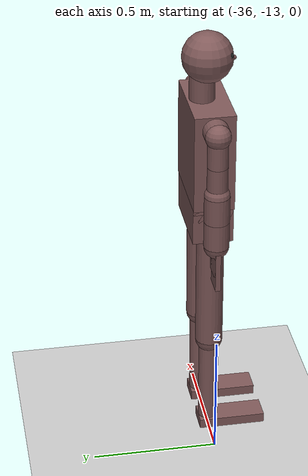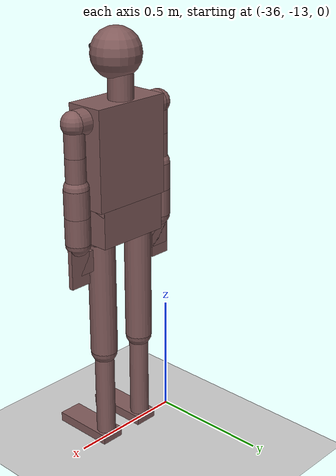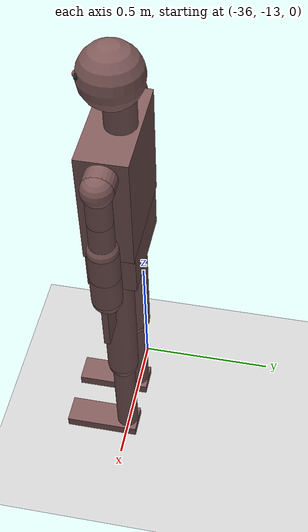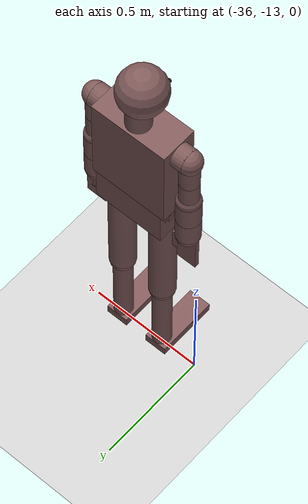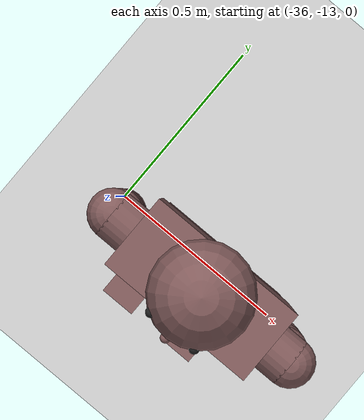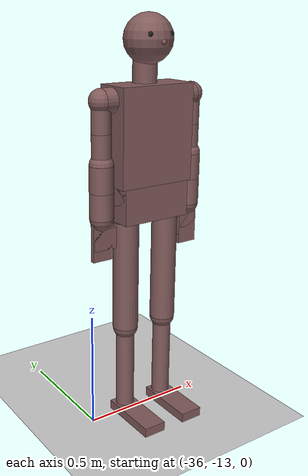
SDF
<sdf version="1.6">
 <world name="default">
  <model name="ground_plane">
   <static>1</static>
   <link name="link">
    <collision name="collision">
     <geometry><plane><normal>0 0 1</normal><size>100 100</size></plane></geometry>
     <surface><friction><ode><mu>100</mu><mu2>50</mu2></ode></friction></surface>
    </collision>
    <visual name="visual">
     <cast_shadows>0</cast_shadows>
     <geometry><plane><normal>0 0 1</normal><size>100 100</size></plane></geometry>
     <material>
      <script><uri>file://media/materials/scripts/gazebo.material</uri><name>Gazebo/Grey</name></script>
     </material>
    </visual>
   </link>
  </model>
  <model name="victim175_hot_moving_0">
   <static>1</static>
   <self_collide>1</self_collide>
   <link name="head">
    <pose>0 0 1.625 0 -0 0</pose>
    <visual name="visual">
     <geometry><sphere><radius>0.1</radius></sphere></geometry>
     <material>
      <emissive>0.5 0.35 0.35 1</emissive>
      <ambient>0.5 0.35 0.35 1</ambient>
      <diffuse>0.5 0.35 0.35 1</diffuse>
      <specular>0 0 0 0</specular>
     </material>
    </visual>
    <collision name="collision"><geometry><sphere><radius>0.1</radius></sphere></geometry></collision>
    <visual name="visual_nose">
     <pose>0 -0.1 -0.01 0 -0 0</pose>
     <geometry><sphere><radius>0.01</radius></sphere></geometry>
     <material>
      <emissive>0.5 0.35 0.35 1</emissive>
      <ambient>0.5 0.35 0.35 1</ambient>
      <diffuse>0.5 0.35 0.35 1</diffuse>
      <specular>0 0 0 0</specular>
     </material>
    </visual>
    <visual name="visual_rEye">
     <pose>-0.05 -0.08 0.02 0 -0 0</pose>
     <geometry><sphere><radius>0.01</radius></sphere></geometry>
     <material>
      <script><uri>file://media/materials/scripts/gazebo.material</uri><name>Gazebo/Black</name></script>
     </material>
    </visual>
    <visual name="visual_lEye">
     <pose>0.05 -0.08 0.02 0 -0 0</pose>
     <geometry><sphere><radius>0.01</radius></sphere></geometry>
     <material>
      <script><uri>file://media/materials/scripts/gazebo.material</uri><name>Gazebo/Black</name></script>
     </material>
    </visual>
    <self_collide>1</self_collide>
   </link>
   <link name="neck">
    <pose>0 0.02 1.49 0 -0 0</pose>
    <visual name="visual">
     <geometry><cylinder><radius>0.05</radius><length>0.15</length></cylinder></geometry>
     <material>
      <emissive>0.5 0.35 0.35 1</emissive>
      <ambient>0.5 0.35 0.35 1</ambient>
      <diffuse>0.5 0.35 0.35 1</diffuse>
      <specular>0 0 0 0</specular>
     </material>
    </visual>
    <collision name="collision">
     <geometry><cylinder><radius>0.05</radius><length>0.15</length></cylinder></geometry>
    </collision>
    <self_collide>1</self_collide>
   </link>
   <joint name="neck_head" type="revolute">
    <pose>0 0.02 -0.075 0 -0 0</pose>
    <child>head</child>
    <parent>neck</parent>
    <axis>
     <xyz>0 0 -1</xyz>
     <limit><lower>-1.7</lower><upper>1.7</upper></limit>
     <dynamics>
      <friction>0.01</friction>
      <spring_reference>0</spring_reference>
      <spring_stiffness>0</spring_stiffness>
     </dynamics>
     <use_parent_model_frame>0</use_parent_model_frame>
    </axis>
   </joint>
   <link name="body">
    <pose>0 0 1.255 0 -0 0</pose>
    <visual name="visual">
     <geometry><box><size>0.34 0.16 0.4</size></box></geometry>
     <material>
      <emissive>0.5 0.35 0.35 1</emissive>
      <ambient>0.5 0.35 0.35 1</ambient>
      <diffuse>0.5 0.35 0.35 1</diffuse>
      <specular>0 0 0 0</specular>
     </material>
    </visual>
    <collision name="collision"><geometry><box><size>0.34 0.16 0.4</size></box></geometry></collision>
    <self_collide>1</self_collide>
   </link>
   <joint name="body_neck" type="revolute">
    <pose>0 0.06 -0.075 0 -0 0</pose>
    <child>neck</child>
    <parent>body</parent>
    <axis>
     <xyz>1 0 0</xyz>
     <limit><lower>-0.2</lower><upper>1</upper></limit>
     <dynamics>
      <friction>0.01</friction>
      <spring_reference>0</spring_reference>
      <spring_stiffness>0</spring_stiffness>
     </dynamics>
     <use_parent_model_frame>0</use_parent_model_frame>
    </axis>
   </joint>
   <link name="waist">
    <pose>0 0 1.005 0 -0 0</pose>
    <visual name="visual">
     <pose>0 0 -0.025 0 -0 0</pose>
     <geometry><box><size>0.31 0.16 0.15</size></box></geometry>
     <material>
      <emissive>0.5 0.35 0.35 1</emissive>
      <ambient>0.5 0.35 0.35 1</ambient>
      <diffuse>0.5 0.35 0.35 1</diffuse>
      <specular>0 0 0 0</specular>
     </material>
    </visual>
    <collision name="collision"><geometry><box><size>0.31 0.16 0.1</size></box></geometry></collision>
    <visual name="visual2">
     <pose>0 0 0.05 3.14159 1.57079 3.14159</pose>
     <geometry><cylinder><radius>0.08</radius><length>0.31</length></cylinder></geometry>
     <material>
      <emissive>0.5 0.35 0.35 1</emissive>
      <ambient>0.5 0.35 0.35 1</ambient>
      <diffuse>0.5 0.35 0.35 1</diffuse>
      <specular>0 0 0 0</specular>
     </material>
    </visual>
    <collision name="collision2">
     <pose>0 0 0.05 3.14159 1.57079 3.14159</pose>
     <geometry><cylinder><radius>0.08</radius><length>0.31</length></cylinder></geometry>
    </collision>
    <self_collide>1</self_collide>
   </link>
   <joint name="body_waist" type="revolute">
    <pose>0 0 0.05 0 -0 0</pose>
    <child>waist</child>
    <parent>body</parent>
    <axis>
     <xyz>-1 0 0</xyz>
     <limit><lower>0</lower><upper>0</upper></limit>
     <dynamics>
      <friction>0.01</friction>
      <spring_reference>0</spring_reference>
      <spring_stiffness>0</spring_stiffness>
     </dynamics>
     <use_parent_model_frame>0</use_parent_model_frame>
    </axis>
   </joint>
   <link name="rHand">
    <pose>-0.22 0 0.84 0 -0 0</pose>
    <visual name="visual">
     <geometry><box><size>0.09 0.02 0.18</size></box></geometry>
     <material>
      <emissive>0.5 0.35 0.35 1</emissive>
      <ambient>0.5 0.35 0.35 1</ambient>
      <diffuse>0.5 0.35 0.35 1</diffuse>
      <specular>0 0 0 0</specular>
     </material>
    </visual>
    <collision name="collision"><geometry><box><size>0.09 0.02 0.18</size></box></geometry></collision>
    <visual name="visual2">
     <pose>0.02 0 0 0 -0 0</pose>
     <geometry><box><size>0.12 0.02 0.09</size></box></geometry>
     <material>
      <emissive>0.5 0.35 0.35 1</emissive>
      <ambient>0.5 0.35 0.35 1</ambient>
      <diffuse>0.5 0.35 0.35 1</diffuse>
      <specular>0 0 0 0</specular>
     </material>
    </visual>
    <collision name="collision2">
     <pose>0.02 0 0 0 -0 0</pose>
     <geometry><box><size>0.12 0.02 0.09</size></box></geometry>
    </collision>
    <self_collide>1</self_collide>
   </link>
   <link name="lHand">
    <pose>0.22 0 0.84 0 -0 0</pose>
    <visual name="visual">
     <geometry><box><size>0.09 0.02 0.18</size></box></geometry>
     <material>
      <emissive>0.5 0.35 0.35 1</emissive>
      <ambient>0.5 0.35 0.35 1</ambient>
      <diffuse>0.5 0.35 0.35 1</diffuse>
      <specular>0 0 0 0</specular>
     </material>
    </visual>
    <collision name="collision"><geometry><box><size>0.09 0.02 0.18</size></box></geometry></collision>
    <visual name="visual2">
     <pose>-0.02 0 0 0 -0 0</pose>
     <geometry><box><size>0.12 0.02 0.09</size></box></geometry>
     <material>
      <emissive>0.5 0.35 0.35 1</emissive>
      <ambient>0.5 0.35 0.35 1</ambient>
      <diffuse>0.5 0.35 0.35 1</diffuse>
      <specular>0 0 0 0</specular>
     </material>
    </visual>
    <collision name="collision2">
     <pose>-0.02 0 0 0 -0 0</pose>
     <geometry><box><size>0.12 0.02 0.09</size></box></geometry>
    </collision>
    <self_collide>1</self_collide>
   </link>
   <link name="rFoot">
    <pose>-0.1 -0.095 0.02 0 -0 0</pose>
    <visual name="visual">
     <geometry><box><size>0.1 0.27 0.04</size></box></geometry>
     <material>
      <emissive>0.5 0.35 0.35 1</emissive>
      <ambient>0.5 0.35 0.35 1</ambient>
      <diffuse>0.5 0.35 0.35 1</diffuse>
      <specular>0 0 0 0</specular>
     </material>
    </visual>
    <collision name="collision"><geometry><box><size>0.1 0.27 0.04</size></box></geometry></collision>
    <self_collide>1</self_collide>
   </link>
   <link name="lFoot">
    <pose>0.1 -0.095 0.02 0 -0 0</pose>
    <visual name="visual">
     <geometry><box><size>0.1 0.27 0.04</size></box></geometry>
     <material>
      <emissive>0.5 0.35 0.35 1</emissive>
      <ambient>0.5 0.35 0.35 1</ambient>
      <diffuse>0.5 0.35 0.35 1</diffuse>
      <specular>0 0 0 0</specular>
     </material>
    </visual>
    <collision name="collision"><geometry><box><size>0.1 0.27 0.04</size></box></geometry></collision>
    <self_collide>1</self_collide>
   </link>
   <link name="rLeg2">
    <pose>-0.1 0 0.23 0 -0 0</pose>
    <visual name="visual">
     <geometry><cylinder><radius>0.04</radius><length>0.38</length></cylinder></geometry>
     <material>
      <emissive>0.5 0.35 0.35 1</emissive>
      <ambient>0.5 0.35 0.35 1</ambient>
      <diffuse>0.5 0.35 0.35 1</diffuse>
      <specular>0 0 0 0</specular>
     </material>
    </visual>
    <collision name="collision">
     <geometry><cylinder><radius>0.04</radius><length>0.38</length></cylinder></geometry>
    </collision>
    <visual name="visual2">
     <pose>0 0 -0.19 0 -0 0</pose>
     <geometry><sphere><radius>0.04</radius></sphere></geometry>
     <material>
      <emissive>0.5 0.35 0.35 1</emissive>
      <ambient>0.5 0.35 0.35 1</ambient>
      <diffuse>0.5 0.35 0.35 1</diffuse>
      <specular>0 0 0 0</specular>
     </material>
    </visual>
    <collision name="collision2">
     <pose>0 0 -0.19 0 -0 0</pose>
     <geometry><sphere><radius>0.04</radius></sphere></geometry>
    </collision>
    <self_collide>1</self_collide>
   </link>
   <link name="lLeg2">
    <pose>0.1 0 0.23 0 -0 0</pose>
    <visual name="visual">
     <geometry><cylinder><radius>0.04</radius><length>0.38</length></cylinder></geometry>
     <material>
      <emissive>0.5 0.35 0.35 1</emissive>
      <ambient>0.5 0.35 0.35 1</ambient>
      <diffuse>0.5 0.35 0.35 1</diffuse>
      <specular>0 0 0 0</specular>
     </material>
    </visual>
    <collision name="collision">
     <geometry><cylinder><radius>0.04</radius><length>0.38</length></cylinder></geometry>
    </collision>
    <visual name="visual2">
     <pose>0 0 -0.19 0 -0 0</pose>
     <geometry><sphere><radius>0.04</radius></sphere></geometry>
     <material>
      <emissive>0.5 0.35 0.35 1</emissive>
      <ambient>0.5 0.35 0.35 1</ambient>
      <diffuse>0.5 0.35 0.35 1</diffuse>
      <specular>0 0 0 0</specular>
     </material>
    </visual>
    <collision name="collision2">
     <pose>0 0 -0.19 0 -0 0</pose>
     <geometry><sphere><radius>0.04</radius></sphere></geometry>
    </collision>
    <self_collide>1</self_collide>
   </link>
   <joint name="rLeg2_rFoot" type="revolute">
    <pose>0 0.095 0.02 0 -0 0</pose>
    <child>rFoot</child>
    <parent>rLeg2</parent>
    <axis>
     <xyz>1 0 0</xyz>
     <limit><lower>0</lower><upper>0</upper></limit>
     <dynamics>
      <friction>0.01</friction>
      <spring_reference>0</spring_reference>
      <spring_stiffness>0</spring_stiffness>
     </dynamics>
     <use_parent_model_frame>0</use_parent_model_frame>
    </axis>
   </joint>
   <joint name="lLeg2_lFoot" type="revolute">
    <pose>0 0.095 0.02 0 -0 0</pose>
    <child>lFoot</child>
    <parent>lLeg2</parent>
    <axis>
     <xyz>1 0 0</xyz>
     <limit><lower>0</lower><upper>0</upper></limit>
     <dynamics>
      <friction>0.01</friction>
      <spring_reference>0</spring_reference>
      <spring_stiffness>0</spring_stiffness>
     </dynamics>
     <use_parent_model_frame>0</use_parent_model_frame>
    </axis>
   </joint>
   <link name="rLeg1">
    <pose>-0.1 0 0.66 0 -0 0</pose>
    <visual name="visual">
     <geometry><cylinder><radius>0.055</radius><length>0.48</length></cylinder></geometry>
     <material>
      <emissive>0.5 0.35 0.35 1</emissive>
      <ambient>0.5 0.35 0.35 1</ambient>
      <diffuse>0.5 0.35 0.35 1</diffuse>
      <specular>0 0 0 0</specular>
     </material>
    </visual>
    <collision name="collision">
     <geometry><cylinder><radius>0.055</radius><length>0.48</length></cylinder></geometry>
    </collision>
    <visual name="visual2">
     <pose>0 0 -0.24 0 -0 0</pose>
     <geometry><sphere><radius>0.055</radius></sphere></geometry>
     <material>
      <emissive>0.5 0.35 0.35 1</emissive>
      <ambient>0.5 0.35 0.35 1</ambient>
      <diffuse>0.5 0.35 0.35 1</diffuse>
      <specular>0 0 0 0</specular>
     </material>
    </visual>
    <collision name="collision2">
     <pose>0 0 -0.24 0 -0 0</pose>
     <geometry><sphere><radius>0.055</radius></sphere></geometry>
    </collision>
    <visual name="visual3">
     <pose>0 0 0.24 0 -0 0</pose>
     <geometry><sphere><radius>0.055</radius></sphere></geometry>
     <material>
      <emissive>0.5 0.35 0.35 1</emissive>
      <ambient>0.5 0.35 0.35 1</ambient>
      <diffuse>0.5 0.35 0.35 1</diffuse>
      <specular>0 0 0 0</specular>
     </material>
    </visual>
    <collision name="collision3">
     <pose>0 0 0.24 0 -0 0</pose>
     <geometry><sphere><radius>0.055</radius></sphere></geometry>
    </collision>
    <self_collide>1</self_collide>
   </link>
   <link name="lLeg1">
    <pose>0.1 0 0.66 0 -0 0</pose>
    <visual name="visual">
     <geometry><cylinder><radius>0.055</radius><length>0.48</length></cylinder></geometry>
     <material>
      <emissive>0.5 0.35 0.35 1</emissive>
      <ambient>0.5 0.35 0.35 1</ambient>
      <diffuse>0.5 0.35 0.35 1</diffuse>
      <specular>0 0 0 0</specular>
     </material>
    </visual>
    <collision name="collision">
     <geometry><cylinder><radius>0.055</radius><length>0.48</length></cylinder></geometry>
    </collision>
    <visual name="visual2">
     <pose>0 0 -0.24 0 -0 0</pose>
     <geometry><sphere><radius>0.055</radius></sphere></geometry>
     <material>
      <emissive>0.5 0.35 0.35 1</emissive>
      <ambient>0.5 0.35 0.35 1</ambient>
      <diffuse>0.5 0.35 0.35 1</diffuse>
      <specular>0 0 0 0</specular>
     </material>
    </visual>
    <collision name="collision2">
     <pose>0 0 -0.24 0 -0 0</pose>
     <geometry><sphere><radius>0.055</radius></sphere></geometry>
    </collision>
    <visual name="visual3">
     <pose>0 0 0.24 0 -0 0</pose>
     <geometry><sphere><radius>0.055</radius></sphere></geometry>
     <material>
      <emissive>0.5 0.35 0.35 1</emissive>
      <ambient>0.5 0.35 0.35 1</ambient>
      <diffuse>0.5 0.35 0.35 1</diffuse>
      <specular>0 0 0 0</specular>
     </material>
    </visual>
    <collision name="collision3">
     <pose>0 0 0.24 0 -0 0</pose>
     <geometry><sphere><radius>0.055</radius></sphere></geometry>
    </collision>
    <self_collide>1</self_collide>
   </link>
   <joint name="rLeg1_rLeg2" type="revolute">
    <pose>0 0 0.19 0 -0 0</pose>
    <child>rLeg2</child>
    <parent>rLeg1</parent>
    <axis>
     <xyz>1 0 0</xyz>
     <limit><lower>0</lower><upper>0</upper></limit>
     <dynamics>
      <friction>0.01</friction>
      <spring_reference>0</spring_reference>
      <spring_stiffness>0</spring_stiffness>
     </dynamics>
     <use_parent_model_frame>0</use_parent_model_frame>
    </axis>
   </joint>
   <joint name="lLeg1_lLeg2" type="revolute">
    <pose>0 0 0.19 0 -0 0</pose>
    <child>lLeg2</child>
    <parent>lLeg1</parent>
    <axis>
     <xyz>1 0 0</xyz>
     <limit><lower>0</lower><upper>0</upper></limit>
     <dynamics>
      <friction>0.01</friction>
      <spring_reference>0</spring_reference>
      <spring_stiffness>0</spring_stiffness>
     </dynamics>
     <use_parent_model_frame>0</use_parent_model_frame>
    </axis>
   </joint>
   <link name="rButt">
    <pose>-0.1 0 0.9275 0 -0 0</pose>
    <visual name="visual">
     <geometry><cylinder><radius>0.055</radius><length>0.055</length></cylinder></geometry>
     <material>
      <emissive>0.5 0.35 0.35 1</emissive>
      <ambient>0.5 0.35 0.35 1</ambient>
      <diffuse>0.5 0.35 0.35 1</diffuse>
      <specular>0 0 0 0</specular>
     </material>
    </visual>
    <collision name="collision">
     <geometry><cylinder><radius>0.055</radius><length>0.055</length></cylinder></geometry>
    </collision>
    <self_collide>1</self_collide>
   </link>
   <link name="lButt">
    <pose>0.1 0 0.9275 0 -0 0</pose>
    <visual name="visual">
     <geometry><cylinder><radius>0.055</radius><length>0.055</length></cylinder></geometry>
     <material>
      <emissive>0.5 0.35 0.35 1</emissive>
      <ambient>0.5 0.35 0.35 1</ambient>
      <diffuse>0.5 0.35 0.35 1</diffuse>
      <specular>0 0 0 0</specular>
     </material>
    </visual>
    <collision name="collision">
     <geometry><cylinder><radius>0.055</radius><length>0.055</length></cylinder></geometry>
    </collision>
    <self_collide>1</self_collide>
   </link>
   <joint name="rButt_rLeg1" type="revolute">
    <pose>0 0 0.24 0 -0 0</pose>
    <child>rLeg1</child>
    <parent>rButt</parent>
    <axis>
     <xyz>1 0 0</xyz>
     <limit><lower>0</lower><upper>0</upper></limit>
     <dynamics>
      <friction>0.01</friction>
      <spring_reference>0</spring_reference>
      <spring_stiffness>0</spring_stiffness>
     </dynamics>
     <use_parent_model_frame>0</use_parent_model_frame>
    </axis>
   </joint>
   <joint name="lButt_lLeg1" type="revolute">
    <pose>0 0 0.24 0 -0 0</pose>
    <child>lLeg1</child>
    <parent>lButt</parent>
    <axis>
     <xyz>1 0 0</xyz>
     <limit><lower>0</lower><upper>0</upper></limit>
     <dynamics>
      <friction>0.01</friction>
      <spring_reference>0</spring_reference>
      <spring_stiffness>0</spring_stiffness>
     </dynamics>
     <use_parent_model_frame>0</use_parent_model_frame>
    </axis>
   </joint>
   <joint name="waist_rButt" type="revolute">
    <child>rButt</child>
    <parent>waist</parent>
    <axis>
     <xyz>0 0 -1</xyz>
     <limit><lower>-1</lower><upper>1</upper></limit>
     <dynamics>
      <friction>0.01</friction>
      <spring_reference>0</spring_reference>
      <spring_stiffness>0</spring_stiffness>
     </dynamics>
     <use_parent_model_frame>0</use_parent_model_frame>
    </axis>
   </joint>
   <joint name="waist_lButt" type="revolute">
    <child>lButt</child>
    <parent>waist</parent>
    <axis>
     <xyz>0 0 1</xyz>
     <limit><lower>-1</lower><upper>1</upper></limit>
     <dynamics>
      <friction>0.01</friction>
      <spring_reference>0</spring_reference>
      <spring_stiffness>0</spring_stiffness>
     </dynamics>
     <use_parent_model_frame>0</use_parent_model_frame>
    </axis>
   </joint>
   <link name="rShoulder">
    <pose>-0.195 0 1.4 0 -0 0</pose>
    <visual name="visual">
     <pose>0 0 0 3.14159 1.57079 3.14159</pose>
     <geometry><cylinder><radius>0.05</radius><length>0.05</length></cylinder></geometry>
     <material>
      <emissive>0.5 0.35 0.35 1</emissive>
      <ambient>0.5 0.35 0.35 1</ambient>
      <diffuse>0.5 0.35 0.35 1</diffuse>
      <specular>0 0 0 0</specular>
     </material>
    </visual>
    <collision name="collision">
     <pose>0 0 0 3.14159 1.57079 3.14159</pose>
     <geometry><cylinder><radius>0.05</radius><length>0.05</length></cylinder></geometry>
    </collision>
    <self_collide>1</self_collide>
   </link>
   <link name="lShoulder">
    <pose>0.195 0 1.4 0 -0 0</pose>
    <visual name="visual">
     <pose>0 0 0 3.14159 1.57079 3.14159</pose>
     <geometry><cylinder><radius>0.05</radius><length>0.05</length></cylinder></geometry>
     <material>
      <emissive>0.5 0.35 0.35 1</emissive>
      <ambient>0.5 0.35 0.35 1</ambient>
      <diffuse>0.5 0.35 0.35 1</diffuse>
      <specular>0 0 0 0</specular>
     </material>
    </visual>
    <collision name="collision">
     <pose>0 0 0 3.14159 1.57079 3.14159</pose>
     <geometry><cylinder><radius>0.05</radius><length>0.05</length></cylinder></geometry>
    </collision>
    <self_collide>1</self_collide>
   </link>
   <joint name="body_rShoulder" type="revolute">
    <child>rShoulder</child>
    <parent>body</parent>
    <axis>
     <xyz>-1 0 0</xyz>
     <limit><lower>-1.5708</lower><upper>3.2</upper></limit>
     <dynamics>
      <friction>0.01</friction>
      <spring_reference>0</spring_reference>
      <spring_stiffness>0</spring_stiffness>
     </dynamics>
     <use_parent_model_frame>0</use_parent_model_frame>
    </axis>
   </joint>
   <joint name="body_lShoulder" type="revolute">
    <child>lShoulder</child>
    <parent>body</parent>
    <axis>
     <xyz>1 0 0</xyz>
     <limit><lower>-1.5708</lower><upper>3.2</upper></limit>
     <dynamics>
      <friction>0.01</friction>
      <spring_reference>0</spring_reference>
      <spring_stiffness>0</spring_stiffness>
     </dynamics>
     <use_parent_model_frame>0</use_parent_model_frame>
    </axis>
   </joint>
   <link name="rArm1U">
    <pose>-0.22 0 1.3375 0 -0 0</pose>
    <visual name="visual">
     <geometry><cylinder><radius>0.04</radius><length>0.125</length></cylinder></geometry>
     <material>
      <emissive>0.5 0.35 0.35 1</emissive>
      <ambient>0.5 0.35 0.35 1</ambient>
      <diffuse>0.5 0.35 0.35 1</diffuse>
      <specular>0 0 0 0</specular>
     </material>
    </visual>
    <collision name="collision">
     <geometry><cylinder><radius>0.04</radius><length>0.125</length></cylinder></geometry>
    </collision>
    <visual name="visual2">
     <pose>0 0 0.0625 0 -0 0</pose>
     <geometry><sphere><radius>0.05</radius></sphere></geometry>
     <material>
      <emissive>0.5 0.35 0.35 1</emissive>
      <ambient>0.5 0.35 0.35 1</ambient>
      <diffuse>0.5 0.35 0.35 1</diffuse>
      <specular>0 0 0 0</specular>
     </material>
    </visual>
    <collision name="collision2">
     <pose>0 0 0.0625 0 -0 0</pose>
     <geometry><sphere><radius>0.05</radius></sphere></geometry>
    </collision>
    <self_collide>1</self_collide>
   </link>
   <link name="rArm1L">
    <pose>-0.22 0 1.2125 0 -0 0</pose>
    <visual name="visual">
     <geometry><cylinder><radius>0.04</radius><length>0.125</length></cylinder></geometry>
     <material>
      <emissive>0.5 0.35 0.35 1</emissive>
      <ambient>0.5 0.35 0.35 1</ambient>
      <diffuse>0.5 0.35 0.35 1</diffuse>
      <specular>0 0 0 0</specular>
     </material>
    </visual>
    <collision name="collision">
     <geometry><cylinder><radius>0.04</radius><length>0.125</length></cylinder></geometry>
    </collision>
    <visual name="visual2">
     <pose>0 0 -0.0625 0 -0 0</pose>
     <geometry><sphere><radius>0.05</radius></sphere></geometry>
     <material>
      <emissive>0.5 0.35 0.35 1</emissive>
      <ambient>0.5 0.35 0.35 1</ambient>
      <diffuse>0.5 0.35 0.35 1</diffuse>
      <specular>0 0 0 0</specular>
     </material>
    </visual>
    <collision name="collision2">
     <pose>0 0 -0.0625 0 -0 0</pose>
     <geometry><sphere><radius>0.05</radius></sphere></geometry>
    </collision>
    <self_collide>1</self_collide>
   </link>
   <joint name="rArm1U_rArm1L" type="revolute">
    <pose>0 0 0.0625 0 -0 0</pose>
    <child>rArm1L</child>
    <parent>rArm1U</parent>
    <axis>
     <xyz>0 0 -1</xyz>
     <limit><lower>-1.5708</lower><upper>1.5708</upper></limit>
     <dynamics>
      <friction>0.01</friction>
      <spring_reference>0</spring_reference>
      <spring_stiffness>0</spring_stiffness>
     </dynamics>
     <use_parent_model_frame>0</use_parent_model_frame>
    </axis>
   </joint>
   <link name="lArm1U">
    <pose>0.22 0 1.3375 0 -0 0</pose>
    <visual name="visual">
     <geometry><cylinder><radius>0.04</radius><length>0.125</length></cylinder></geometry>
     <material>
      <emissive>0.5 0.35 0.35 1</emissive>
      <ambient>0.5 0.35 0.35 1</ambient>
      <diffuse>0.5 0.35 0.35 1</diffuse>
      <specular>0 0 0 0</specular>
     </material>
    </visual>
    <collision name="collision">
     <geometry><cylinder><radius>0.04</radius><length>0.125</length></cylinder></geometry>
    </collision>
    <visual name="visual2">
     <pose>0 0 0.0625 0 -0 0</pose>
     <geometry><sphere><radius>0.05</radius></sphere></geometry>
     <material>
      <emissive>0.5 0.35 0.35 1</emissive>
      <ambient>0.5 0.35 0.35 1</ambient>
      <diffuse>0.5 0.35 0.35 1</diffuse>
      <specular>0 0 0 0</specular>
     </material>
    </visual>
    <collision name="collision2">
     <pose>0 0 0.0625 0 -0 0</pose>
     <geometry><sphere><radius>0.05</radius></sphere></geometry>
    </collision>
    <self_collide>1</self_collide>
   </link>
   <link name="lArm1L">
    <pose>0.22 0 1.2125 0 -0 0</pose>
    <visual name="visual">
     <geometry><cylinder><radius>0.04</radius><length>0.125</length></cylinder></geometry>
     <material>
      <emissive>0.5 0.35 0.35 1</emissive>
      <ambient>0.5 0.35 0.35 1</ambient>
      <diffuse>0.5 0.35 0.35 1</diffuse>
      <specular>0 0 0 0</specular>
     </material>
    </visual>
    <collision name="collision">
     <geometry><cylinder><radius>0.04</radius><length>0.125</length></cylinder></geometry>
    </collision>
    <visual name="visual2">
     <pose>0 0 -0.0625 0 -0 0</pose>
     <geometry><sphere><radius>0.05</radius></sphere></geometry>
     <material>
      <emissive>0.5 0.35 0.35 1</emissive>
      <ambient>0.5 0.35 0.35 1</ambient>
      <diffuse>0.5 0.35 0.35 1</diffuse>
      <specular>0 0 0 0</specular>
     </material>
    </visual>
    <collision name="collision2">
     <pose>0 0 -0.0625 0 -0 0</pose>
     <geometry><sphere><radius>0.05</radius></sphere></geometry>
    </collision>
    <self_collide>1</self_collide>
   </link>
   <joint name="lArm1U_lArm1L" type="revolute">
    <pose>0 0 0.0625 0 -0 0</pose>
    <child>lArm1L</child>
    <parent>lArm1U</parent>
    <axis>
     <xyz>0 0 1</xyz>
     <limit><lower>-1.5708</lower><upper>1.5708</upper></limit>
     <dynamics>
      <friction>0.01</friction>
      <spring_reference>0</spring_reference>
      <spring_stiffness>0</spring_stiffness>
     </dynamics>
     <use_parent_model_frame>0</use_parent_model_frame>
    </axis>
   </joint>
   <joint name="rShoulder_rArm1" type="revolute">
    <pose>0 0 0.0625 0 -0 0</pose>
    <child>rArm1U</child>
    <parent>rShoulder</parent>
    <axis>
     <xyz>0 -1 0</xyz>
     <limit><lower>-1.5708</lower><upper>3.2</upper></limit>
     <dynamics>
      <friction>0.01</friction>
      <spring_reference>0</spring_reference>
      <spring_stiffness>0</spring_stiffness>
     </dynamics>
     <use_parent_model_frame>0</use_parent_model_frame>
    </axis>
   </joint>
   <joint name="lShoulder_lArm1" type="revolute">
    <pose>0 0 0.0625 0 -0 0</pose>
    <child>lArm1U</child>
    <parent>lShoulder</parent>
    <axis>
     <xyz>0 1 0</xyz>
     <limit><lower>-1.5708</lower><upper>3.2</upper></limit>
     <dynamics>
      <friction>0.01</friction>
      <spring_reference>0</spring_reference>
      <spring_stiffness>0</spring_stiffness>
     </dynamics>
     <use_parent_model_frame>0</use_parent_model_frame>
    </axis>
   </joint>
   <link name="rArm2U">
    <pose>-0.22 0 1.095 0 -0 0</pose>
    <visual name="visual">
     <geometry><cylinder><radius>0.05</radius><length>0.11</length></cylinder></geometry>
     <material>
      <emissive>0.5 0.35 0.35 1</emissive>
      <ambient>0.5 0.35 0.35 1</ambient>
      <diffuse>0.5 0.35 0.35 1</diffuse>
      <specular>0 0 0 0</specular>
     </material>
    </visual>
    <collision name="collision">
     <geometry><cylinder><radius>0.05</radius><length>0.11</length></cylinder></geometry>
    </collision>
    <self_collide>1</self_collide>
   </link>
   <link name="rArm2L">
    <pose>-0.22 0 0.985 0 -0 0</pose>
    <visual name="visual">
     <geometry><cylinder><radius>0.05</radius><length>0.11</length></cylinder></geometry>
     <material>
      <emissive>0.5 0.35 0.35 1</emissive>
      <ambient>0.5 0.35 0.35 1</ambient>
      <diffuse>0.5 0.35 0.35 1</diffuse>
      <specular>0 0 0 0</specular>
     </material>
    </visual>
    <collision name="collision">
     <geometry><cylinder><radius>0.05</radius><length>0.11</length></cylinder></geometry>
    </collision>
    <visual name="visual2">
     <pose>0 0 -0.055 0 -0 0</pose>
     <geometry><sphere><radius>0.05</radius></sphere></geometry>
     <material>
      <emissive>0.5 0.35 0.35 1</emissive>
      <ambient>0.5 0.35 0.35 1</ambient>
      <diffuse>0.5 0.35 0.35 1</diffuse>
      <specular>0 0 0 0</specular>
     </material>
    </visual>
    <collision name="collision2">
     <pose>0 0 -0.055 0 -0 0</pose>
     <geometry><sphere><radius>0.05</radius></sphere></geometry>
    </collision>
    <self_collide>1</self_collide>
   </link>
   <joint name="rArm2U_rArm2L" type="revolute">
    <pose>0 0 0.055 0 -0 0</pose>
    <child>rArm2L</child>
    <parent>rArm2U</parent>
    <axis>
     <xyz>0 0 -1</xyz>
     <limit><lower>-1.5708</lower><upper>1.5708</upper></limit>
     <dynamics>
      <friction>0.01</friction>
      <spring_reference>0</spring_reference>
      <spring_stiffness>0</spring_stiffness>
     </dynamics>
     <use_parent_model_frame>0</use_parent_model_frame>
    </axis>
   </joint>
   <link name="lArm2U">
    <pose>0.22 0 1.095 0 -0 0</pose>
    <visual name="visual">
     <geometry><cylinder><radius>0.05</radius><length>0.11</length></cylinder></geometry>
     <material>
      <emissive>0.5 0.35 0.35 1</emissive>
      <ambient>0.5 0.35 0.35 1</ambient>
      <diffuse>0.5 0.35 0.35 1</diffuse>
      <specular>0 0 0 0</specular>
     </material>
    </visual>
    <collision name="collision">
     <geometry><cylinder><radius>0.05</radius><length>0.11</length></cylinder></geometry>
    </collision>
    <self_collide>1</self_collide>
   </link>
   <link name="lArm2L">
    <pose>0.22 0 0.985 0 -0 0</pose>
    <visual name="visual">
     <geometry><cylinder><radius>0.05</radius><length>0.11</length></cylinder></geometry>
     <material>
      <emissive>0.5 0.35 0.35 1</emissive>
      <ambient>0.5 0.35 0.35 1</ambient>
      <diffuse>0.5 0.35 0.35 1</diffuse>
      <specular>0 0 0 0</specular>
     </material>
    </visual>
    <collision name="collision">
     <geometry><cylinder><radius>0.05</radius><length>0.11</length></cylinder></geometry>
    </collision>
    <visual name="visual2">
     <pose>0 0 -0.055 0 -0 0</pose>
     <geometry><sphere><radius>0.05</radius></sphere></geometry>
     <material>
      <emissive>0.5 0.35 0.35 1</emissive>
      <ambient>0.5 0.35 0.35 1</ambient>
      <diffuse>0.5 0.35 0.35 1</diffuse>
      <specular>0 0 0 0</specular>
     </material>
    </visual>
    <collision name="collision2">
     <pose>0 0 -0.055 0 -0 0</pose>
     <geometry><sphere><radius>0.05</radius></sphere></geometry>
    </collision>
    <self_collide>1</self_collide>
   </link>
   <joint name="lArm2U_lArm2L" type="revolute">
    <pose>0 0 0.055 0 -0 0</pose>
    <child>lArm2L</child>
    <parent>lArm2U</parent>
    <axis>
     <xyz>0 0 1</xyz>
     <limit><lower>-1.5708</lower><upper>1.5708</upper></limit>
     <dynamics>
      <friction>0.01</friction>
      <spring_reference>0</spring_reference>
      <spring_stiffness>0</spring_stiffness>
     </dynamics>
     <use_parent_model_frame>0</use_parent_model_frame>
    </axis>
   </joint>
   <joint name="rArm1_rArm2" type="revolute">
    <pose>0 0 0.055 0 -0 0</pose>
    <child>rArm2U</child>
    <parent>rArm1L</parent>
    <axis>
     <xyz>-1 0 0</xyz>
     <limit><lower>0</lower><upper>2.8</upper></limit>
     <dynamics>
      <friction>0.01</friction>
      <spring_reference>0</spring_reference>
      <spring_stiffness>0</spring_stiffness>
     </dynamics>
     <use_parent_model_frame>0</use_parent_model_frame>
    </axis>
   </joint>
   <joint name="lArm1_lArm2" type="revolute">
    <pose>0 0 0.055 0 -0 0</pose>
    <child>lArm2U</child>
    <parent>lArm1L</parent>
    <axis>
     <xyz>-1 0 0</xyz>
     <limit><lower>0</lower><upper>2.8</upper></limit>
     <dynamics>
      <friction>0.01</friction>
      <spring_reference>0</spring_reference>
      <spring_stiffness>0</spring_stiffness>
     </dynamics>
     <use_parent_model_frame>0</use_parent_model_frame>
    </axis>
   </joint>
   <joint name="rArm2_rHand" type="revolute">
    <pose>0 0 0.09 0 -0 0</pose>
    <child>rHand</child>
    <parent>rArm2L</parent>
    <axis>
     <xyz>-1 0 0</xyz>
     <limit><lower>-1.57</lower><upper>1.4</upper></limit>
     <dynamics>
      <friction>0.01</friction>
      <spring_reference>0</spring_reference>
      <spring_stiffness>0</spring_stiffness>
     </dynamics>
     <use_parent_model_frame>0</use_parent_model_frame>
    </axis>
   </joint>
   <joint name="lArm2_lHand" type="revolute">
    <pose>0 0 0.09 0 -0 0</pose>
    <child>lHand</child>
    <parent>lArm2L</parent>
    <axis>
     <xyz>-1 0 0</xyz>
     <limit><lower>-1.57</lower><upper>1.4</upper></limit>
     <dynamics>
      <friction>0.01</friction>
      <spring_reference>0</spring_reference>
      <spring_stiffness>0</spring_stiffness>
     </dynamics>
     <use_parent_model_frame>0</use_parent_model_frame>
    </axis>
   </joint>
   <joint name="world_rFoot" type="revolute">
    <child>rFoot</child>
    <parent>world</parent>
    <axis>
     <xyz>0 0 1</xyz>
     <limit><lower>0</lower><upper>0</upper></limit>
     <use_parent_model_frame>0</use_parent_model_frame>
     <dynamics><spring_reference>0</spring_reference><spring_stiffness>0</spring_stiffness></dynamics>
    </axis>
   </joint>
   <joint name="world_lFoot" type="revolute">
    <child>lFoot</child>
    <parent>world</parent>
    <axis>
     <xyz>0 0 1</xyz>
     <limit><lower>0</lower><upper>0</upper></limit>
     <use_parent_model_frame>0</use_parent_model_frame>
     <dynamics><spring_reference>0</spring_reference><spring_stiffness>0</spring_stiffness></dynamics>
    </axis>
   </joint>
   <pose>-35.7317 -13 0 0 -0 0</pose>
  </model>
 </world>
</sdf>
